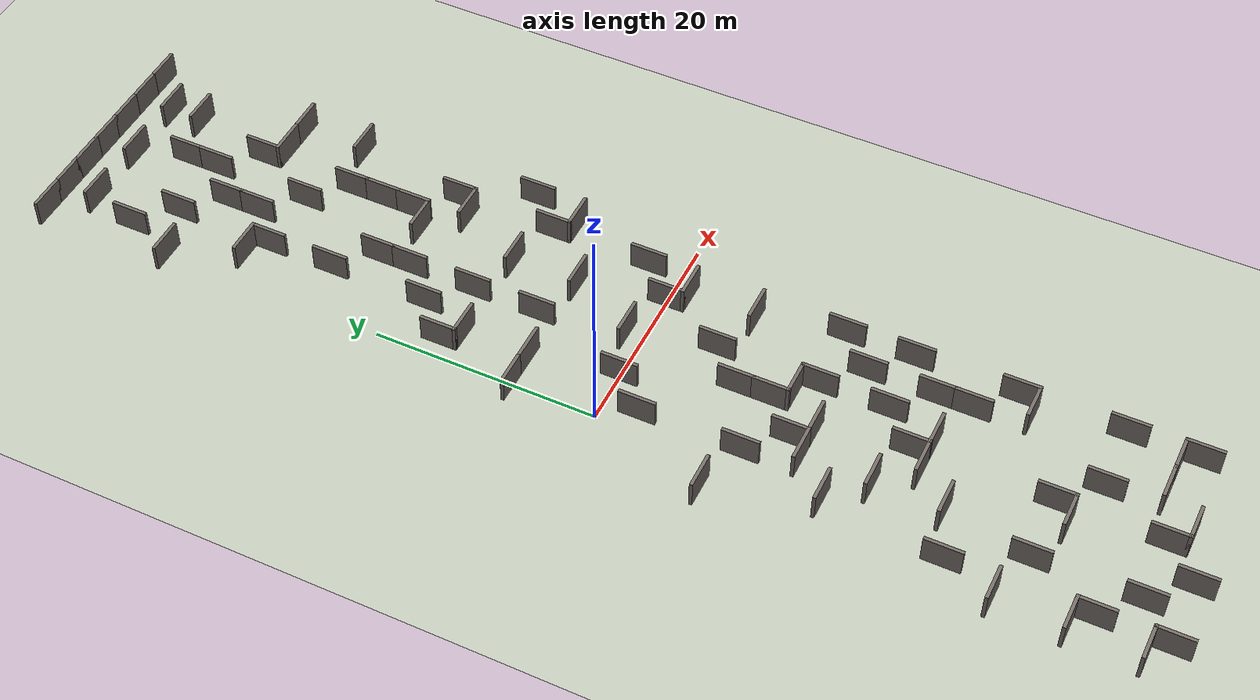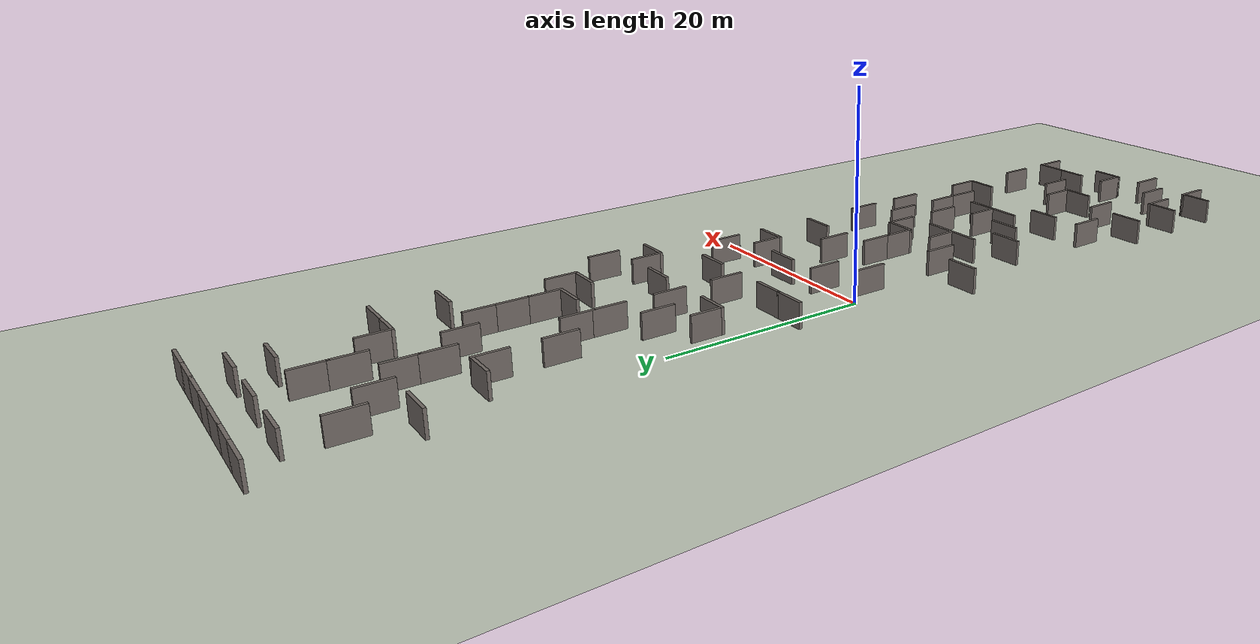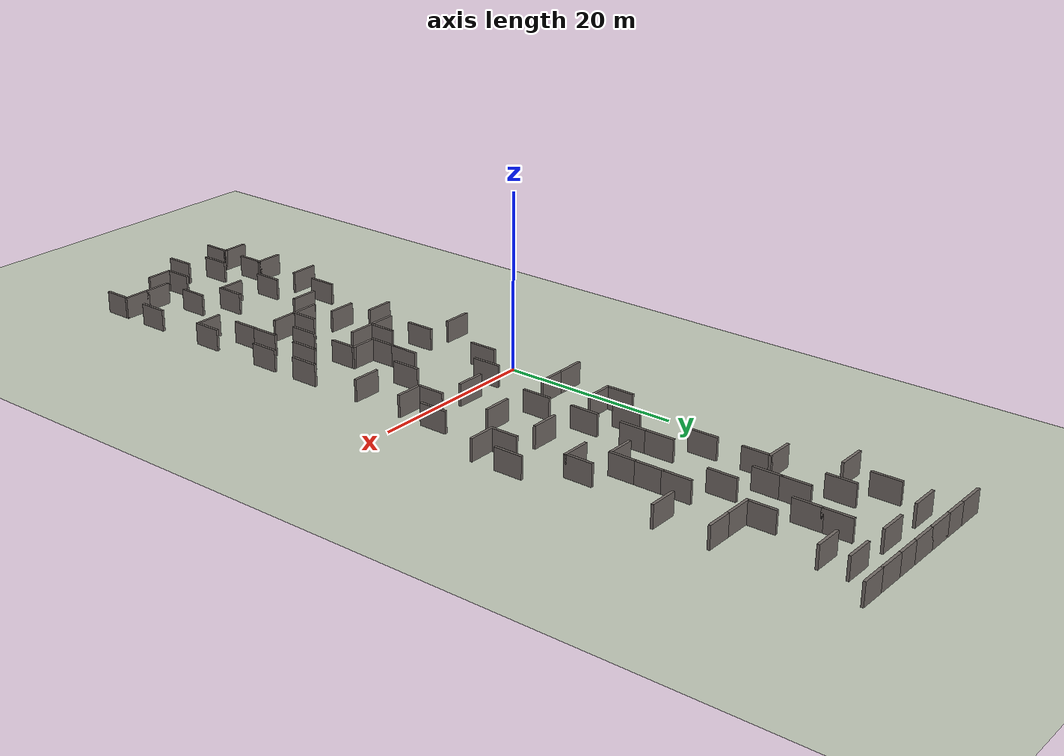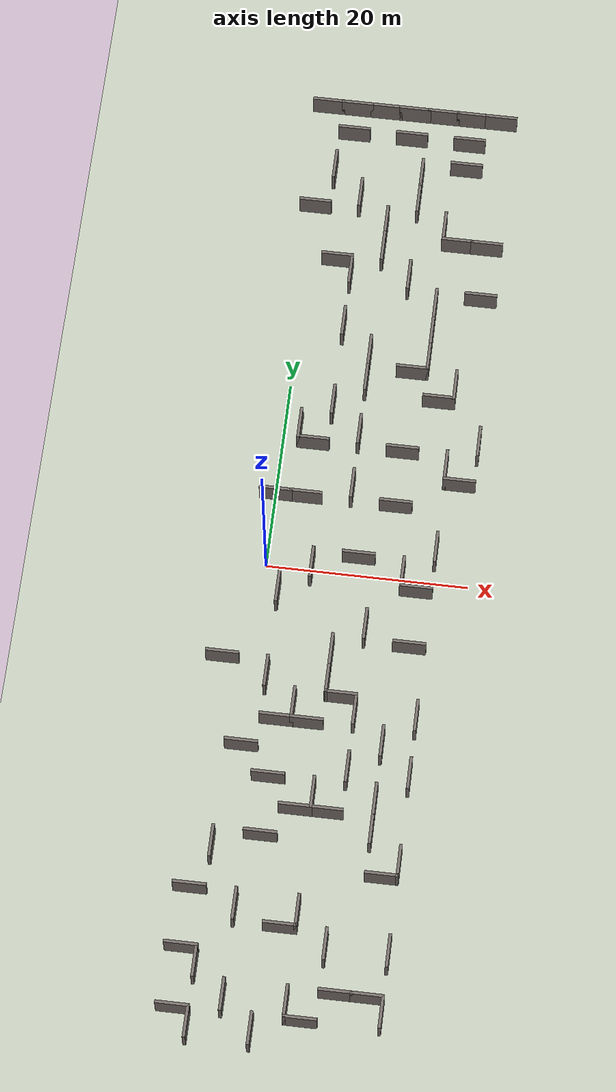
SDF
<sdf version="1.9">
 <world name="swap_world">
  <model name="ground_plane">
   <static>true</static>
   <link name="link">
    <collision name="collision">
     <geometry><plane><normal>0 0 1</normal><size>125 125</size></plane></geometry>
    </collision>
    <visual name="visual">
     <geometry><plane><normal>0 0 1</normal><size>125 125</size></plane></geometry>
     <material><ambient>0.75 0.78 0.72 1</ambient><diffuse>0.75 0.78 0.72 1</diffuse></material>
    </visual>
   </link>
  </model>
  <model name="wall_272">
   <static>true</static>
   <link name="l">
    <pose>-3.00 -10.50 1.25 0 0 0.0000</pose>
    <collision name="c"><geometry><box><size>3.30 0.3 2.5</size></box></geometry></collision>
    <visual name="v">
     <geometry><box><size>3.30 0.3 2.5</size></box></geometry>
     <material><ambient>0.45 0.42 0.4 1</ambient><diffuse>0.45 0.42 0.4 1</diffuse></material>
    </visual>
   </link>
  </model>
  <model name="wall_273">
   <static>true</static>
   <link name="l">
    <pose>-1.50 -30.00 1.25 0 0 1.5708</pose>
    <collision name="c"><geometry><box><size>3.30 0.3 2.5</size></box></geometry></collision>
    <visual name="v">
     <geometry><box><size>3.30 0.3 2.5</size></box></geometry>
     <material><ambient>0.45 0.42 0.4 1</ambient><diffuse>0.45 0.42 0.4 1</diffuse></material>
    </visual>
   </link>
  </model>
  <model name="wall_274">
   <static>true</static>
   <link name="l">
    <pose>-3.00 -34.50 1.25 0 0 0.0000</pose>
    <collision name="c"><geometry><box><size>3.30 0.3 2.5</size></box></geometry></collision>
    <visual name="v">
     <geometry><box><size>3.30 0.3 2.5</size></box></geometry>
     <material><ambient>0.45 0.42 0.4 1</ambient><diffuse>0.45 0.42 0.4 1</diffuse></material>
    </visual>
   </link>
  </model>
  <model name="wall_275">
   <static>true</static>
   <link name="l">
    <pose>-1.50 -42.00 1.25 0 0 1.5708</pose>
    <collision name="c"><geometry><box><size>3.30 0.3 2.5</size></box></geometry></collision>
    <visual name="v">
     <geometry><box><size>3.30 0.3 2.5</size></box></geometry>
     <material><ambient>0.45 0.42 0.4 1</ambient><diffuse>0.45 0.42 0.4 1</diffuse></material>
    </visual>
   </link>
  </model>
  <model name="wall_276">
   <static>true</static>
   <link name="l">
    <pose>-3.00 -40.50 1.25 0 0 0.0000</pose>
    <collision name="c"><geometry><box><size>3.30 0.3 2.5</size></box></geometry></collision>
    <visual name="v">
     <geometry><box><size>3.30 0.3 2.5</size></box></geometry>
     <material><ambient>0.45 0.42 0.4 1</ambient><diffuse>0.45 0.42 0.4 1</diffuse></material>
    </visual>
   </link>
  </model>
  <model name="wall_277">
   <static>true</static>
   <link name="l">
    <pose>-1.50 -48.00 1.25 0 0 1.5708</pose>
    <collision name="c"><geometry><box><size>3.30 0.3 2.5</size></box></geometry></collision>
    <visual name="v">
     <geometry><box><size>3.30 0.3 2.5</size></box></geometry>
     <material><ambient>0.45 0.42 0.4 1</ambient><diffuse>0.45 0.42 0.4 1</diffuse></material>
    </visual>
   </link>
  </model>
  <model name="wall_278">
   <static>true</static>
   <link name="l">
    <pose>-3.00 -46.50 1.25 0 0 0.0000</pose>
    <collision name="c"><geometry><box><size>3.30 0.3 2.5</size></box></geometry></collision>
    <visual name="v">
     <geometry><box><size>3.30 0.3 2.5</size></box></geometry>
     <material><ambient>0.45 0.42 0.4 1</ambient><diffuse>0.45 0.42 0.4 1</diffuse></material>
    </visual>
   </link>
  </model>
  <model name="wall_279">
   <static>true</static>
   <link name="l">
    <pose>0.00 52.50 1.25 0 0 0.0000</pose>
    <collision name="c"><geometry><box><size>3.30 0.3 2.5</size></box></geometry></collision>
    <visual name="v">
     <geometry><box><size>3.30 0.3 2.5</size></box></geometry>
     <material><ambient>0.45 0.42 0.4 1</ambient><diffuse>0.45 0.42 0.4 1</diffuse></material>
    </visual>
   </link>
  </model>
  <model name="wall_280">
   <static>true</static>
   <link name="l">
    <pose>1.50 45.00 1.25 0 0 1.5708</pose>
    <collision name="c"><geometry><box><size>3.30 0.3 2.5</size></box></geometry></collision>
    <visual name="v">
     <geometry><box><size>3.30 0.3 2.5</size></box></geometry>
     <material><ambient>0.45 0.42 0.4 1</ambient><diffuse>0.45 0.42 0.4 1</diffuse></material>
    </visual>
   </link>
  </model>
  <model name="wall_281">
   <static>true</static>
   <link name="l">
    <pose>0.00 40.50 1.25 0 0 0.0000</pose>
    <collision name="c"><geometry><box><size>3.30 0.3 2.5</size></box></geometry></collision>
    <visual name="v">
     <geometry><box><size>3.30 0.3 2.5</size></box></geometry>
     <material><ambient>0.45 0.42 0.4 1</ambient><diffuse>0.45 0.42 0.4 1</diffuse></material>
    </visual>
   </link>
  </model>
  <model name="wall_282">
   <static>true</static>
   <link name="l">
    <pose>1.50 15.00 1.25 0 0 1.5708</pose>
    <collision name="c"><geometry><box><size>3.30 0.3 2.5</size></box></geometry></collision>
    <visual name="v">
     <geometry><box><size>3.30 0.3 2.5</size></box></geometry>
     <material><ambient>0.45 0.42 0.4 1</ambient><diffuse>0.45 0.42 0.4 1</diffuse></material>
    </visual>
   </link>
  </model>
  <model name="wall_283">
   <static>true</static>
   <link name="l">
    <pose>0.00 7.50 1.25 0 0 0.0000</pose>
    <collision name="c"><geometry><box><size>3.30 0.3 2.5</size></box></geometry></collision>
    <visual name="v">
     <geometry><box><size>3.30 0.3 2.5</size></box></geometry>
     <material><ambient>0.45 0.42 0.4 1</ambient><diffuse>0.45 0.42 0.4 1</diffuse></material>
    </visual>
   </link>
  </model>
  <model name="wall_284">
   <static>true</static>
   <link name="l">
    <pose>1.50 -3.00 1.25 0 0 1.5708</pose>
    <collision name="c"><geometry><box><size>3.30 0.3 2.5</size></box></geometry></collision>
    <visual name="v">
     <geometry><box><size>3.30 0.3 2.5</size></box></geometry>
     <material><ambient>0.45 0.42 0.4 1</ambient><diffuse>0.45 0.42 0.4 1</diffuse></material>
    </visual>
   </link>
  </model>
  <model name="wall_285">
   <static>true</static>
   <link name="l">
    <pose>1.50 -12.00 1.25 0 0 1.5708</pose>
    <collision name="c"><geometry><box><size>3.30 0.3 2.5</size></box></geometry></collision>
    <visual name="v">
     <geometry><box><size>3.30 0.3 2.5</size></box></geometry>
     <material><ambient>0.45 0.42 0.4 1</ambient><diffuse>0.45 0.42 0.4 1</diffuse></material>
    </visual>
   </link>
  </model>
  <model name="wall_286">
   <static>true</static>
   <link name="l">
    <pose>0.00 -19.50 1.25 0 0 0.0000</pose>
    <collision name="c"><geometry><box><size>3.30 0.3 2.5</size></box></geometry></collision>
    <visual name="v">
     <geometry><box><size>3.30 0.3 2.5</size></box></geometry>
     <material><ambient>0.45 0.42 0.4 1</ambient><diffuse>0.45 0.42 0.4 1</diffuse></material>
    </visual>
   </link>
  </model>
  <model name="wall_287">
   <static>true</static>
   <link name="l">
    <pose>1.50 -36.00 1.25 0 0 1.5708</pose>
    <collision name="c"><geometry><box><size>3.30 0.3 2.5</size></box></geometry></collision>
    <visual name="v">
     <geometry><box><size>3.30 0.3 2.5</size></box></geometry>
     <material><ambient>0.45 0.42 0.4 1</ambient><diffuse>0.45 0.42 0.4 1</diffuse></material>
    </visual>
   </link>
  </model>
  <model name="wall_288">
   <static>true</static>
   <link name="l">
    <pose>1.50 -45.00 1.25 0 0 1.5708</pose>
    <collision name="c"><geometry><box><size>3.30 0.3 2.5</size></box></geometry></collision>
    <visual name="v">
     <geometry><box><size>3.30 0.3 2.5</size></box></geometry>
     <material><ambient>0.45 0.42 0.4 1</ambient><diffuse>0.45 0.42 0.4 1</diffuse></material>
    </visual>
   </link>
  </model>
  <model name="wall_289">
   <static>true</static>
   <link name="l">
    <pose>3.00 52.50 1.25 0 0 0.0000</pose>
    <collision name="c"><geometry><box><size>3.30 0.3 2.5</size></box></geometry></collision>
    <visual name="v">
     <geometry><box><size>3.30 0.3 2.5</size></box></geometry>
     <material><ambient>0.45 0.42 0.4 1</ambient><diffuse>0.45 0.42 0.4 1</diffuse></material>
    </visual>
   </link>
  </model>
  <model name="wall_290">
   <static>true</static>
   <link name="l">
    <pose>3.00 49.50 1.25 0 0 0.0000</pose>
    <collision name="c"><geometry><box><size>3.30 0.3 2.5</size></box></geometry></collision>
    <visual name="v">
     <geometry><box><size>3.30 0.3 2.5</size></box></geometry>
     <material><ambient>0.45 0.42 0.4 1</ambient><diffuse>0.45 0.42 0.4 1</diffuse></material>
    </visual>
   </link>
  </model>
  <model name="wall_291">
   <static>true</static>
   <link name="l">
    <pose>4.50 42.00 1.25 0 0 1.5708</pose>
    <collision name="c"><geometry><box><size>3.30 0.3 2.5</size></box></geometry></collision>
    <visual name="v">
     <geometry><box><size>3.30 0.3 2.5</size></box></geometry>
     <material><ambient>0.45 0.42 0.4 1</ambient><diffuse>0.45 0.42 0.4 1</diffuse></material>
    </visual>
   </link>
  </model>
  <model name="wall_292">
   <static>true</static>
   <link name="l">
    <pose>4.50 33.00 1.25 0 0 1.5708</pose>
    <collision name="c"><geometry><box><size>3.30 0.3 2.5</size></box></geometry></collision>
    <visual name="v">
     <geometry><box><size>3.30 0.3 2.5</size></box></geometry>
     <material><ambient>0.45 0.42 0.4 1</ambient><diffuse>0.45 0.42 0.4 1</diffuse></material>
    </visual>
   </link>
  </model>
  <model name="wall_293">
   <static>true</static>
   <link name="l">
    <pose>3.00 34.50 1.25 0 0 0.0000</pose>
    <collision name="c"><geometry><box><size>3.30 0.3 2.5</size></box></geometry></collision>
    <visual name="v">
     <geometry><box><size>3.30 0.3 2.5</size></box></geometry>
     <material><ambient>0.45 0.42 0.4 1</ambient><diffuse>0.45 0.42 0.4 1</diffuse></material>
    </visual>
   </link>
  </model>
  <model name="wall_294">
   <static>true</static>
   <link name="l">
    <pose>4.50 27.00 1.25 0 0 1.5708</pose>
    <collision name="c"><geometry><box><size>3.30 0.3 2.5</size></box></geometry></collision>
    <visual name="v">
     <geometry><box><size>3.30 0.3 2.5</size></box></geometry>
     <material><ambient>0.45 0.42 0.4 1</ambient><diffuse>0.45 0.42 0.4 1</diffuse></material>
    </visual>
   </link>
  </model>
  <model name="wall_295">
   <static>true</static>
   <link name="l">
    <pose>4.50 18.00 1.25 0 0 1.5708</pose>
    <collision name="c"><geometry><box><size>3.30 0.3 2.5</size></box></geometry></collision>
    <visual name="v">
     <geometry><box><size>3.30 0.3 2.5</size></box></geometry>
     <material><ambient>0.45 0.42 0.4 1</ambient><diffuse>0.45 0.42 0.4 1</diffuse></material>
    </visual>
   </link>
  </model>
  <model name="wall_296">
   <static>true</static>
   <link name="l">
    <pose>3.00 13.50 1.25 0 0 0.0000</pose>
    <collision name="c"><geometry><box><size>3.30 0.3 2.5</size></box></geometry></collision>
    <visual name="v">
     <geometry><box><size>3.30 0.3 2.5</size></box></geometry>
     <material><ambient>0.45 0.42 0.4 1</ambient><diffuse>0.45 0.42 0.4 1</diffuse></material>
    </visual>
   </link>
  </model>
  <model name="wall_297">
   <static>true</static>
   <link name="l">
    <pose>3.00 7.50 1.25 0 0 0.0000</pose>
    <collision name="c"><geometry><box><size>3.30 0.3 2.5</size></box></geometry></collision>
    <visual name="v">
     <geometry><box><size>3.30 0.3 2.5</size></box></geometry>
     <material><ambient>0.45 0.42 0.4 1</ambient><diffuse>0.45 0.42 0.4 1</diffuse></material>
    </visual>
   </link>
  </model>
  <model name="wall_298">
   <static>true</static>
   <link name="l">
    <pose>4.50 -0.00 1.25 0 0 1.5708</pose>
    <collision name="c"><geometry><box><size>3.30 0.3 2.5</size></box></geometry></collision>
    <visual name="v">
     <geometry><box><size>3.30 0.3 2.5</size></box></geometry>
     <material><ambient>0.45 0.42 0.4 1</ambient><diffuse>0.45 0.42 0.4 1</diffuse></material>
    </visual>
   </link>
  </model>
  <model name="wall_299">
   <static>true</static>
   <link name="l">
    <pose>4.50 -15.00 1.25 0 0 1.5708</pose>
    <collision name="c"><geometry><box><size>3.30 0.3 2.5</size></box></geometry></collision>
    <visual name="v">
     <geometry><box><size>3.30 0.3 2.5</size></box></geometry>
     <material><ambient>0.45 0.42 0.4 1</ambient><diffuse>0.45 0.42 0.4 1</diffuse></material>
    </visual>
   </link>
  </model>
  <model name="wall_300">
   <static>true</static>
   <link name="l">
    <pose>3.00 -16.50 1.25 0 0 0.0000</pose>
    <collision name="c"><geometry><box><size>3.30 0.3 2.5</size></box></geometry></collision>
    <visual name="v">
     <geometry><box><size>3.30 0.3 2.5</size></box></geometry>
     <material><ambient>0.45 0.42 0.4 1</ambient><diffuse>0.45 0.42 0.4 1</diffuse></material>
    </visual>
   </link>
  </model>
  <model name="wall_301">
   <static>true</static>
   <link name="l">
    <pose>3.00 -22.50 1.25 0 0 0.0000</pose>
    <collision name="c"><geometry><box><size>3.30 0.3 2.5</size></box></geometry></collision>
    <visual name="v">
     <geometry><box><size>3.30 0.3 2.5</size></box></geometry>
     <material><ambient>0.45 0.42 0.4 1</ambient><diffuse>0.45 0.42 0.4 1</diffuse></material>
    </visual>
   </link>
  </model>
  <model name="wall_302">
   <static>true</static>
   <link name="l">
    <pose>3.00 -28.50 1.25 0 0 0.0000</pose>
    <collision name="c"><geometry><box><size>3.30 0.3 2.5</size></box></geometry></collision>
    <visual name="v">
     <geometry><box><size>3.30 0.3 2.5</size></box></geometry>
     <material><ambient>0.45 0.42 0.4 1</ambient><diffuse>0.45 0.42 0.4 1</diffuse></material>
    </visual>
   </link>
  </model>
  <model name="wall_303">
   <static>true</static>
   <link name="l">
    <pose>4.50 -48.00 1.25 0 0 1.5708</pose>
    <collision name="c"><geometry><box><size>3.30 0.3 2.5</size></box></geometry></collision>
    <visual name="v">
     <geometry><box><size>3.30 0.3 2.5</size></box></geometry>
     <material><ambient>0.45 0.42 0.4 1</ambient><diffuse>0.45 0.42 0.4 1</diffuse></material>
    </visual>
   </link>
  </model>
  <model name="wall_304">
   <static>true</static>
   <link name="l">
    <pose>6.00 52.50 1.25 0 0 0.0000</pose>
    <collision name="c"><geometry><box><size>3.30 0.3 2.5</size></box></geometry></collision>
    <visual name="v">
     <geometry><box><size>3.30 0.3 2.5</size></box></geometry>
     <material><ambient>0.45 0.42 0.4 1</ambient><diffuse>0.45 0.42 0.4 1</diffuse></material>
    </visual>
   </link>
  </model>
  <model name="wall_305">
   <static>true</static>
   <link name="l">
    <pose>7.50 39.00 1.25 0 0 1.5708</pose>
    <collision name="c"><geometry><box><size>3.30 0.3 2.5</size></box></geometry></collision>
    <visual name="v">
     <geometry><box><size>3.30 0.3 2.5</size></box></geometry>
     <material><ambient>0.45 0.42 0.4 1</ambient><diffuse>0.45 0.42 0.4 1</diffuse></material>
    </visual>
   </link>
  </model>
  <model name="wall_306">
   <static>true</static>
   <link name="l">
    <pose>7.50 36.00 1.25 0 0 1.5708</pose>
    <collision name="c"><geometry><box><size>3.30 0.3 2.5</size></box></geometry></collision>
    <visual name="v">
     <geometry><box><size>3.30 0.3 2.5</size></box></geometry>
     <material><ambient>0.45 0.42 0.4 1</ambient><diffuse>0.45 0.42 0.4 1</diffuse></material>
    </visual>
   </link>
  </model>
  <model name="wall_307">
   <static>true</static>
   <link name="l">
    <pose>7.50 24.00 1.25 0 0 1.5708</pose>
    <collision name="c"><geometry><box><size>3.30 0.3 2.5</size></box></geometry></collision>
    <visual name="v">
     <geometry><box><size>3.30 0.3 2.5</size></box></geometry>
     <material><ambient>0.45 0.42 0.4 1</ambient><diffuse>0.45 0.42 0.4 1</diffuse></material>
    </visual>
   </link>
  </model>
  <model name="wall_308">
   <static>true</static>
   <link name="l">
    <pose>7.50 21.00 1.25 0 0 1.5708</pose>
    <collision name="c"><geometry><box><size>3.30 0.3 2.5</size></box></geometry></collision>
    <visual name="v">
     <geometry><box><size>3.30 0.3 2.5</size></box></geometry>
     <material><ambient>0.45 0.42 0.4 1</ambient><diffuse>0.45 0.42 0.4 1</diffuse></material>
    </visual>
   </link>
  </model>
  <model name="wall_309">
   <static>true</static>
   <link name="l">
    <pose>7.50 15.00 1.25 0 0 1.5708</pose>
    <collision name="c"><geometry><box><size>3.30 0.3 2.5</size></box></geometry></collision>
    <visual name="v">
     <geometry><box><size>3.30 0.3 2.5</size></box></geometry>
     <material><ambient>0.45 0.42 0.4 1</ambient><diffuse>0.45 0.42 0.4 1</diffuse></material>
    </visual>
   </link>
  </model>
  <model name="wall_310">
   <static>true</static>
   <link name="l">
    <pose>7.50 9.00 1.25 0 0 1.5708</pose>
    <collision name="c"><geometry><box><size>3.30 0.3 2.5</size></box></geometry></collision>
    <visual name="v">
     <geometry><box><size>3.30 0.3 2.5</size></box></geometry>
     <material><ambient>0.45 0.42 0.4 1</ambient><diffuse>0.45 0.42 0.4 1</diffuse></material>
    </visual>
   </link>
  </model>
  <model name="wall_311">
   <static>true</static>
   <link name="l">
    <pose>7.50 -9.00 1.25 0 0 1.5708</pose>
    <collision name="c"><geometry><box><size>3.30 0.3 2.5</size></box></geometry></collision>
    <visual name="v">
     <geometry><box><size>3.30 0.3 2.5</size></box></geometry>
     <material><ambient>0.45 0.42 0.4 1</ambient><diffuse>0.45 0.42 0.4 1</diffuse></material>
    </visual>
   </link>
  </model>
  <model name="wall_312">
   <static>true</static>
   <link name="l">
    <pose>7.50 -12.00 1.25 0 0 1.5708</pose>
    <collision name="c"><geometry><box><size>3.30 0.3 2.5</size></box></geometry></collision>
    <visual name="v">
     <geometry><box><size>3.30 0.3 2.5</size></box></geometry>
     <material><ambient>0.45 0.42 0.4 1</ambient><diffuse>0.45 0.42 0.4 1</diffuse></material>
    </visual>
   </link>
  </model>
  <model name="wall_313">
   <static>true</static>
   <link name="l">
    <pose>6.00 -16.50 1.25 0 0 0.0000</pose>
    <collision name="c"><geometry><box><size>3.30 0.3 2.5</size></box></geometry></collision>
    <visual name="v">
     <geometry><box><size>3.30 0.3 2.5</size></box></geometry>
     <material><ambient>0.45 0.42 0.4 1</ambient><diffuse>0.45 0.42 0.4 1</diffuse></material>
    </visual>
   </link>
  </model>
  <model name="wall_314">
   <static>true</static>
   <link name="l">
    <pose>7.50 -24.00 1.25 0 0 1.5708</pose>
    <collision name="c"><geometry><box><size>3.30 0.3 2.5</size></box></geometry></collision>
    <visual name="v">
     <geometry><box><size>3.30 0.3 2.5</size></box></geometry>
     <material><ambient>0.45 0.42 0.4 1</ambient><diffuse>0.45 0.42 0.4 1</diffuse></material>
    </visual>
   </link>
  </model>
  <model name="wall_315">
   <static>true</static>
   <link name="l">
    <pose>6.00 -25.50 1.25 0 0 0.0000</pose>
    <collision name="c"><geometry><box><size>3.30 0.3 2.5</size></box></geometry></collision>
    <visual name="v">
     <geometry><box><size>3.30 0.3 2.5</size></box></geometry>
     <material><ambient>0.45 0.42 0.4 1</ambient><diffuse>0.45 0.42 0.4 1</diffuse></material>
    </visual>
   </link>
  </model>
  <model name="wall_316">
   <static>true</static>
   <link name="l">
    <pose>7.50 -36.00 1.25 0 0 1.5708</pose>
    <collision name="c"><geometry><box><size>3.30 0.3 2.5</size></box></geometry></collision>
    <visual name="v">
     <geometry><box><size>3.30 0.3 2.5</size></box></geometry>
     <material><ambient>0.45 0.42 0.4 1</ambient><diffuse>0.45 0.42 0.4 1</diffuse></material>
    </visual>
   </link>
  </model>
  <model name="wall_317">
   <static>true</static>
   <link name="l">
    <pose>6.00 -37.50 1.25 0 0 0.0000</pose>
    <collision name="c"><geometry><box><size>3.30 0.3 2.5</size></box></geometry></collision>
    <visual name="v">
     <geometry><box><size>3.30 0.3 2.5</size></box></geometry>
     <material><ambient>0.45 0.42 0.4 1</ambient><diffuse>0.45 0.42 0.4 1</diffuse></material>
    </visual>
   </link>
  </model>
  <model name="wall_318">
   <static>true</static>
   <link name="l">
    <pose>7.50 -45.00 1.25 0 0 1.5708</pose>
    <collision name="c"><geometry><box><size>3.30 0.3 2.5</size></box></geometry></collision>
    <visual name="v">
     <geometry><box><size>3.30 0.3 2.5</size></box></geometry>
     <material><ambient>0.45 0.42 0.4 1</ambient><diffuse>0.45 0.42 0.4 1</diffuse></material>
    </visual>
   </link>
  </model>
  <model name="wall_319">
   <static>true</static>
   <link name="l">
    <pose>9.00 52.50 1.25 0 0 0.0000</pose>
    <collision name="c"><geometry><box><size>3.30 0.3 2.5</size></box></geometry></collision>
    <visual name="v">
     <geometry><box><size>3.30 0.3 2.5</size></box></geometry>
     <material><ambient>0.45 0.42 0.4 1</ambient><diffuse>0.45 0.42 0.4 1</diffuse></material>
    </visual>
   </link>
  </model>
  <model name="wall_320">
   <static>true</static>
   <link name="l">
    <pose>9.00 49.50 1.25 0 0 0.0000</pose>
    <collision name="c"><geometry><box><size>3.30 0.3 2.5</size></box></geometry></collision>
    <visual name="v">
     <geometry><box><size>3.30 0.3 2.5</size></box></geometry>
     <material><ambient>0.45 0.42 0.4 1</ambient><diffuse>0.45 0.42 0.4 1</diffuse></material>
    </visual>
   </link>
  </model>
  <model name="wall_321">
   <static>true</static>
   <link name="l">
    <pose>10.50 45.00 1.25 0 0 1.5708</pose>
    <collision name="c"><geometry><box><size>3.30 0.3 2.5</size></box></geometry></collision>
    <visual name="v">
     <geometry><box><size>3.30 0.3 2.5</size></box></geometry>
     <material><ambient>0.45 0.42 0.4 1</ambient><diffuse>0.45 0.42 0.4 1</diffuse></material>
    </visual>
   </link>
  </model>
  <model name="wall_322">
   <static>true</static>
   <link name="l">
    <pose>10.50 42.00 1.25 0 0 1.5708</pose>
    <collision name="c"><geometry><box><size>3.30 0.3 2.5</size></box></geometry></collision>
    <visual name="v">
     <geometry><box><size>3.30 0.3 2.5</size></box></geometry>
     <material><ambient>0.45 0.42 0.4 1</ambient><diffuse>0.45 0.42 0.4 1</diffuse></material>
    </visual>
   </link>
  </model>
  <model name="wall_323">
   <static>true</static>
   <link name="l">
    <pose>10.50 33.00 1.25 0 0 1.5708</pose>
    <collision name="c"><geometry><box><size>3.30 0.3 2.5</size></box></geometry></collision>
    <visual name="v">
     <geometry><box><size>3.30 0.3 2.5</size></box></geometry>
     <material><ambient>0.45 0.42 0.4 1</ambient><diffuse>0.45 0.42 0.4 1</diffuse></material>
    </visual>
   </link>
  </model>
  <model name="wall_324">
   <static>true</static>
   <link name="l">
    <pose>9.00 1.50 1.25 0 0 0.0000</pose>
    <collision name="c"><geometry><box><size>3.30 0.3 2.5</size></box></geometry></collision>
    <visual name="v">
     <geometry><box><size>3.30 0.3 2.5</size></box></geometry>
     <material><ambient>0.45 0.42 0.4 1</ambient><diffuse>0.45 0.42 0.4 1</diffuse></material>
    </visual>
   </link>
  </model>
  <model name="wall_325">
   <static>true</static>
   <link name="l">
    <pose>10.50 -6.00 1.25 0 0 1.5708</pose>
    <collision name="c"><geometry><box><size>3.30 0.3 2.5</size></box></geometry></collision>
    <visual name="v">
     <geometry><box><size>3.30 0.3 2.5</size></box></geometry>
     <material><ambient>0.45 0.42 0.4 1</ambient><diffuse>0.45 0.42 0.4 1</diffuse></material>
    </visual>
   </link>
  </model>
  <model name="wall_326">
   <static>true</static>
   <link name="l">
    <pose>10.50 -15.00 1.25 0 0 1.5708</pose>
    <collision name="c"><geometry><box><size>3.30 0.3 2.5</size></box></geometry></collision>
    <visual name="v">
     <geometry><box><size>3.30 0.3 2.5</size></box></geometry>
     <material><ambient>0.45 0.42 0.4 1</ambient><diffuse>0.45 0.42 0.4 1</diffuse></material>
    </visual>
   </link>
  </model>
  <model name="wall_327">
   <static>true</static>
   <link name="l">
    <pose>9.00 -13.50 1.25 0 0 0.0000</pose>
    <collision name="c"><geometry><box><size>3.30 0.3 2.5</size></box></geometry></collision>
    <visual name="v">
     <geometry><box><size>3.30 0.3 2.5</size></box></geometry>
     <material><ambient>0.45 0.42 0.4 1</ambient><diffuse>0.45 0.42 0.4 1</diffuse></material>
    </visual>
   </link>
  </model>
  <model name="wall_328">
   <static>true</static>
   <link name="l">
    <pose>10.50 -21.00 1.25 0 0 1.5708</pose>
    <collision name="c"><geometry><box><size>3.30 0.3 2.5</size></box></geometry></collision>
    <visual name="v">
     <geometry><box><size>3.30 0.3 2.5</size></box></geometry>
     <material><ambient>0.45 0.42 0.4 1</ambient><diffuse>0.45 0.42 0.4 1</diffuse></material>
    </visual>
   </link>
  </model>
  <model name="wall_329">
   <static>true</static>
   <link name="l">
    <pose>9.00 -25.50 1.25 0 0 0.0000</pose>
    <collision name="c"><geometry><box><size>3.30 0.3 2.5</size></box></geometry></collision>
    <visual name="v">
     <geometry><box><size>3.30 0.3 2.5</size></box></geometry>
     <material><ambient>0.45 0.42 0.4 1</ambient><diffuse>0.45 0.42 0.4 1</diffuse></material>
    </visual>
   </link>
  </model>
  <model name="wall_330">
   <static>true</static>
   <link name="l">
    <pose>10.50 -39.00 1.25 0 0 1.5708</pose>
    <collision name="c"><geometry><box><size>3.30 0.3 2.5</size></box></geometry></collision>
    <visual name="v">
     <geometry><box><size>3.30 0.3 2.5</size></box></geometry>
     <material><ambient>0.45 0.42 0.4 1</ambient><diffuse>0.45 0.42 0.4 1</diffuse></material>
    </visual>
   </link>
  </model>
  <model name="wall_331">
   <static>true</static>
   <link name="l">
    <pose>9.00 -46.50 1.25 0 0 0.0000</pose>
    <collision name="c"><geometry><box><size>3.30 0.3 2.5</size></box></geometry></collision>
    <visual name="v">
     <geometry><box><size>3.30 0.3 2.5</size></box></geometry>
     <material><ambient>0.45 0.42 0.4 1</ambient><diffuse>0.45 0.42 0.4 1</diffuse></material>
    </visual>
   </link>
  </model>
  <model name="wall_332">
   <static>true</static>
   <link name="l">
    <pose>12.00 52.50 1.25 0 0 0.0000</pose>
    <collision name="c"><geometry><box><size>3.30 0.3 2.5</size></box></geometry></collision>
    <visual name="v">
     <geometry><box><size>3.30 0.3 2.5</size></box></geometry>
     <material><ambient>0.45 0.42 0.4 1</ambient><diffuse>0.45 0.42 0.4 1</diffuse></material>
    </visual>
   </link>
  </model>
  <model name="wall_333">
   <static>true</static>
   <link name="l">
    <pose>13.50 39.00 1.25 0 0 1.5708</pose>
    <collision name="c"><geometry><box><size>3.30 0.3 2.5</size></box></geometry></collision>
    <visual name="v">
     <geometry><box><size>3.30 0.3 2.5</size></box></geometry>
     <material><ambient>0.45 0.42 0.4 1</ambient><diffuse>0.45 0.42 0.4 1</diffuse></material>
    </visual>
   </link>
  </model>
  <model name="wall_334">
   <static>true</static>
   <link name="l">
    <pose>13.50 30.00 1.25 0 0 1.5708</pose>
    <collision name="c"><geometry><box><size>3.30 0.3 2.5</size></box></geometry></collision>
    <visual name="v">
     <geometry><box><size>3.30 0.3 2.5</size></box></geometry>
     <material><ambient>0.45 0.42 0.4 1</ambient><diffuse>0.45 0.42 0.4 1</diffuse></material>
    </visual>
   </link>
  </model>
  <model name="wall_335">
   <static>true</static>
   <link name="l">
    <pose>13.50 27.00 1.25 0 0 1.5708</pose>
    <collision name="c"><geometry><box><size>3.30 0.3 2.5</size></box></geometry></collision>
    <visual name="v">
     <geometry><box><size>3.30 0.3 2.5</size></box></geometry>
     <material><ambient>0.45 0.42 0.4 1</ambient><diffuse>0.45 0.42 0.4 1</diffuse></material>
    </visual>
   </link>
  </model>
  <model name="wall_336">
   <static>true</static>
   <link name="l">
    <pose>13.50 24.00 1.25 0 0 1.5708</pose>
    <collision name="c"><geometry><box><size>3.30 0.3 2.5</size></box></geometry></collision>
    <visual name="v">
     <geometry><box><size>3.30 0.3 2.5</size></box></geometry>
     <material><ambient>0.45 0.42 0.4 1</ambient><diffuse>0.45 0.42 0.4 1</diffuse></material>
    </visual>
   </link>
  </model>
  <model name="wall_337">
   <static>true</static>
   <link name="l">
    <pose>12.00 22.50 1.25 0 0 0.0000</pose>
    <collision name="c"><geometry><box><size>3.30 0.3 2.5</size></box></geometry></collision>
    <visual name="v">
     <geometry><box><size>3.30 0.3 2.5</size></box></geometry>
     <material><ambient>0.45 0.42 0.4 1</ambient><diffuse>0.45 0.42 0.4 1</diffuse></material>
    </visual>
   </link>
  </model>
  <model name="wall_338">
   <static>true</static>
   <link name="l">
    <pose>12.00 13.50 1.25 0 0 0.0000</pose>
    <collision name="c"><geometry><box><size>3.30 0.3 2.5</size></box></geometry></collision>
    <visual name="v">
     <geometry><box><size>3.30 0.3 2.5</size></box></geometry>
     <material><ambient>0.45 0.42 0.4 1</ambient><diffuse>0.45 0.42 0.4 1</diffuse></material>
    </visual>
   </link>
  </model>
  <model name="wall_339">
   <static>true</static>
   <link name="l">
    <pose>12.00 7.50 1.25 0 0 0.0000</pose>
    <collision name="c"><geometry><box><size>3.30 0.3 2.5</size></box></geometry></collision>
    <visual name="v">
     <geometry><box><size>3.30 0.3 2.5</size></box></geometry>
     <material><ambient>0.45 0.42 0.4 1</ambient><diffuse>0.45 0.42 0.4 1</diffuse></material>
    </visual>
   </link>
  </model>
  <model name="wall_340">
   <static>true</static>
   <link name="l">
    <pose>13.50 -0.00 1.25 0 0 1.5708</pose>
    <collision name="c"><geometry><box><size>3.30 0.3 2.5</size></box></geometry></collision>
    <visual name="v">
     <geometry><box><size>3.30 0.3 2.5</size></box></geometry>
     <material><ambient>0.45 0.42 0.4 1</ambient><diffuse>0.45 0.42 0.4 1</diffuse></material>
    </visual>
   </link>
  </model>
  <model name="wall_341">
   <static>true</static>
   <link name="l">
    <pose>13.50 -18.00 1.25 0 0 1.5708</pose>
    <collision name="c"><geometry><box><size>3.30 0.3 2.5</size></box></geometry></collision>
    <visual name="v">
     <geometry><box><size>3.30 0.3 2.5</size></box></geometry>
     <material><ambient>0.45 0.42 0.4 1</ambient><diffuse>0.45 0.42 0.4 1</diffuse></material>
    </visual>
   </link>
  </model>
  <model name="wall_342">
   <static>true</static>
   <link name="l">
    <pose>13.50 -24.00 1.25 0 0 1.5708</pose>
    <collision name="c"><geometry><box><size>3.30 0.3 2.5</size></box></geometry></collision>
    <visual name="v">
     <geometry><box><size>3.30 0.3 2.5</size></box></geometry>
     <material><ambient>0.45 0.42 0.4 1</ambient><diffuse>0.45 0.42 0.4 1</diffuse></material>
    </visual>
   </link>
  </model>
  <model name="wall_343">
   <static>true</static>
   <link name="l">
    <pose>13.50 -27.00 1.25 0 0 1.5708</pose>
    <collision name="c"><geometry><box><size>3.30 0.3 2.5</size></box></geometry></collision>
    <visual name="v">
     <geometry><box><size>3.30 0.3 2.5</size></box></geometry>
     <material><ambient>0.45 0.42 0.4 1</ambient><diffuse>0.45 0.42 0.4 1</diffuse></material>
    </visual>
   </link>
  </model>
  <model name="wall_344">
   <static>true</static>
   <link name="l">
    <pose>12.00 -43.50 1.25 0 0 0.0000</pose>
    <collision name="c"><geometry><box><size>3.30 0.3 2.5</size></box></geometry></collision>
    <visual name="v">
     <geometry><box><size>3.30 0.3 2.5</size></box></geometry>
     <material><ambient>0.45 0.42 0.4 1</ambient><diffuse>0.45 0.42 0.4 1</diffuse></material>
    </visual>
   </link>
  </model>
  <model name="wall_345">
   <static>true</static>
   <link name="l">
    <pose>15.00 52.50 1.25 0 0 0.0000</pose>
    <collision name="c"><geometry><box><size>3.30 0.3 2.5</size></box></geometry></collision>
    <visual name="v">
     <geometry><box><size>3.30 0.3 2.5</size></box></geometry>
     <material><ambient>0.45 0.42 0.4 1</ambient><diffuse>0.45 0.42 0.4 1</diffuse></material>
    </visual>
   </link>
  </model>
  <model name="wall_346">
   <static>true</static>
   <link name="l">
    <pose>15.00 49.50 1.25 0 0 0.0000</pose>
    <collision name="c"><geometry><box><size>3.30 0.3 2.5</size></box></geometry></collision>
    <visual name="v">
     <geometry><box><size>3.30 0.3 2.5</size></box></geometry>
     <material><ambient>0.45 0.42 0.4 1</ambient><diffuse>0.45 0.42 0.4 1</diffuse></material>
    </visual>
   </link>
  </model>
  <model name="wall_347">
   <static>true</static>
   <link name="l">
    <pose>15.00 46.50 1.25 0 0 0.0000</pose>
    <collision name="c"><geometry><box><size>3.30 0.3 2.5</size></box></geometry></collision>
    <visual name="v">
     <geometry><box><size>3.30 0.3 2.5</size></box></geometry>
     <material><ambient>0.45 0.42 0.4 1</ambient><diffuse>0.45 0.42 0.4 1</diffuse></material>
    </visual>
   </link>
  </model>
  <model name="wall_348">
   <static>true</static>
   <link name="l">
    <pose>15.00 37.50 1.25 0 0 0.0000</pose>
    <collision name="c"><geometry><box><size>3.30 0.3 2.5</size></box></geometry></collision>
    <visual name="v">
     <geometry><box><size>3.30 0.3 2.5</size></box></geometry>
     <material><ambient>0.45 0.42 0.4 1</ambient><diffuse>0.45 0.42 0.4 1</diffuse></material>
    </visual>
   </link>
  </model>
  <model name="wall_349">
   <static>true</static>
   <link name="l">
    <pose>16.50 21.00 1.25 0 0 1.5708</pose>
    <collision name="c"><geometry><box><size>3.30 0.3 2.5</size></box></geometry></collision>
    <visual name="v">
     <geometry><box><size>3.30 0.3 2.5</size></box></geometry>
     <material><ambient>0.45 0.42 0.4 1</ambient><diffuse>0.45 0.42 0.4 1</diffuse></material>
    </visual>
   </link>
  </model>
  <model name="wall_350">
   <static>true</static>
   <link name="l">
    <pose>15.00 19.50 1.25 0 0 0.0000</pose>
    <collision name="c"><geometry><box><size>3.30 0.3 2.5</size></box></geometry></collision>
    <visual name="v">
     <geometry><box><size>3.30 0.3 2.5</size></box></geometry>
     <material><ambient>0.45 0.42 0.4 1</ambient><diffuse>0.45 0.42 0.4 1</diffuse></material>
    </visual>
   </link>
  </model>
  <model name="wall_351">
   <static>true</static>
   <link name="l">
    <pose>16.50 12.00 1.25 0 0 1.5708</pose>
    <collision name="c"><geometry><box><size>3.30 0.3 2.5</size></box></geometry></collision>
    <visual name="v">
     <geometry><box><size>3.30 0.3 2.5</size></box></geometry>
     <material><ambient>0.45 0.42 0.4 1</ambient><diffuse>0.45 0.42 0.4 1</diffuse></material>
    </visual>
   </link>
  </model>
  <model name="wall_352">
   <static>true</static>
   <link name="l">
    <pose>16.50 3.00 1.25 0 0 1.5708</pose>
    <collision name="c"><geometry><box><size>3.30 0.3 2.5</size></box></geometry></collision>
    <visual name="v">
     <geometry><box><size>3.30 0.3 2.5</size></box></geometry>
     <material><ambient>0.45 0.42 0.4 1</ambient><diffuse>0.45 0.42 0.4 1</diffuse></material>
    </visual>
   </link>
  </model>
  <model name="wall_353">
   <static>true</static>
   <link name="l">
    <pose>15.00 -1.50 1.25 0 0 0.0000</pose>
    <collision name="c"><geometry><box><size>3.30 0.3 2.5</size></box></geometry></collision>
    <visual name="v">
     <geometry><box><size>3.30 0.3 2.5</size></box></geometry>
     <material><ambient>0.45 0.42 0.4 1</ambient><diffuse>0.45 0.42 0.4 1</diffuse></material>
    </visual>
   </link>
  </model>
  <model name="wall_354">
   <static>true</static>
   <link name="l">
    <pose>15.00 -7.50 1.25 0 0 0.0000</pose>
    <collision name="c"><geometry><box><size>3.30 0.3 2.5</size></box></geometry></collision>
    <visual name="v">
     <geometry><box><size>3.30 0.3 2.5</size></box></geometry>
     <material><ambient>0.45 0.42 0.4 1</ambient><diffuse>0.45 0.42 0.4 1</diffuse></material>
    </visual>
   </link>
  </model>
  <model name="wall_355">
   <static>true</static>
   <link name="l">
    <pose>16.50 -15.00 1.25 0 0 1.5708</pose>
    <collision name="c"><geometry><box><size>3.30 0.3 2.5</size></box></geometry></collision>
    <visual name="v">
     <geometry><box><size>3.30 0.3 2.5</size></box></geometry>
     <material><ambient>0.45 0.42 0.4 1</ambient><diffuse>0.45 0.42 0.4 1</diffuse></material>
    </visual>
   </link>
  </model>
  <model name="wall_356">
   <static>true</static>
   <link name="l">
    <pose>16.50 -21.00 1.25 0 0 1.5708</pose>
    <collision name="c"><geometry><box><size>3.30 0.3 2.5</size></box></geometry></collision>
    <visual name="v">
     <geometry><box><size>3.30 0.3 2.5</size></box></geometry>
     <material><ambient>0.45 0.42 0.4 1</ambient><diffuse>0.45 0.42 0.4 1</diffuse></material>
    </visual>
   </link>
  </model>
  <model name="wall_357">
   <static>true</static>
   <link name="l">
    <pose>16.50 -30.00 1.25 0 0 1.5708</pose>
    <collision name="c"><geometry><box><size>3.30 0.3 2.5</size></box></geometry></collision>
    <visual name="v">
     <geometry><box><size>3.30 0.3 2.5</size></box></geometry>
     <material><ambient>0.45 0.42 0.4 1</ambient><diffuse>0.45 0.42 0.4 1</diffuse></material>
    </visual>
   </link>
  </model>
  <model name="wall_358">
   <static>true</static>
   <link name="l">
    <pose>15.00 -31.50 1.25 0 0 0.0000</pose>
    <collision name="c"><geometry><box><size>3.30 0.3 2.5</size></box></geometry></collision>
    <visual name="v">
     <geometry><box><size>3.30 0.3 2.5</size></box></geometry>
     <material><ambient>0.45 0.42 0.4 1</ambient><diffuse>0.45 0.42 0.4 1</diffuse></material>
    </visual>
   </link>
  </model>
  <model name="wall_359">
   <static>true</static>
   <link name="l">
    <pose>16.50 -39.00 1.25 0 0 1.5708</pose>
    <collision name="c"><geometry><box><size>3.30 0.3 2.5</size></box></geometry></collision>
    <visual name="v">
     <geometry><box><size>3.30 0.3 2.5</size></box></geometry>
     <material><ambient>0.45 0.42 0.4 1</ambient><diffuse>0.45 0.42 0.4 1</diffuse></material>
    </visual>
   </link>
  </model>
  <model name="wall_360">
   <static>true</static>
   <link name="l">
    <pose>16.50 -45.00 1.25 0 0 1.5708</pose>
    <collision name="c"><geometry><box><size>3.30 0.3 2.5</size></box></geometry></collision>
    <visual name="v">
     <geometry><box><size>3.30 0.3 2.5</size></box></geometry>
     <material><ambient>0.45 0.42 0.4 1</ambient><diffuse>0.45 0.42 0.4 1</diffuse></material>
    </visual>
   </link>
  </model>
  <model name="wall_361">
   <static>true</static>
   <link name="l">
    <pose>15.00 -43.50 1.25 0 0 0.0000</pose>
    <collision name="c"><geometry><box><size>3.30 0.3 2.5</size></box></geometry></collision>
    <visual name="v">
     <geometry><box><size>3.30 0.3 2.5</size></box></geometry>
     <material><ambient>0.45 0.42 0.4 1</ambient><diffuse>0.45 0.42 0.4 1</diffuse></material>
    </visual>
   </link>
  </model>
  <model name="wall_362">
   <static>true</static>
   <link name="l">
    <pose>18.00 52.50 1.25 0 0 0.0000</pose>
    <collision name="c"><geometry><box><size>3.30 0.3 2.5</size></box></geometry></collision>
    <visual name="v">
     <geometry><box><size>3.30 0.3 2.5</size></box></geometry>
     <material><ambient>0.45 0.42 0.4 1</ambient><diffuse>0.45 0.42 0.4 1</diffuse></material>
    </visual>
   </link>
  </model>
  <model name="wall_363">
   <static>true</static>
   <link name="l">
    <pose>18.00 37.50 1.25 0 0 0.0000</pose>
    <collision name="c"><geometry><box><size>3.30 0.3 2.5</size></box></geometry></collision>
    <visual name="v">
     <geometry><box><size>3.30 0.3 2.5</size></box></geometry>
     <material><ambient>0.45 0.42 0.4 1</ambient><diffuse>0.45 0.42 0.4 1</diffuse></material>
    </visual>
   </link>
  </model>
  <model name="wall_364">
   <static>true</static>
   <link name="l">
    <pose>18.00 31.50 1.25 0 0 0.0000</pose>
    <collision name="c"><geometry><box><size>3.30 0.3 2.5</size></box></geometry></collision>
    <visual name="v">
     <geometry><box><size>3.30 0.3 2.5</size></box></geometry>
     <material><ambient>0.45 0.42 0.4 1</ambient><diffuse>0.45 0.42 0.4 1</diffuse></material>
    </visual>
   </link>
  </model>
  <model name="wall_365">
   <static>true</static>
   <link name="l">
    <pose>19.50 15.00 1.25 0 0 1.5708</pose>
    <collision name="c"><geometry><box><size>3.30 0.3 2.5</size></box></geometry></collision>
    <visual name="v">
     <geometry><box><size>3.30 0.3 2.5</size></box></geometry>
     <material><ambient>0.45 0.42 0.4 1</ambient><diffuse>0.45 0.42 0.4 1</diffuse></material>
    </visual>
   </link>
  </model>
  <model name="wall_366">
   <static>true</static>
   <link name="l">
    <pose>18.00 10.50 1.25 0 0 0.0000</pose>
    <collision name="c"><geometry><box><size>3.30 0.3 2.5</size></box></geometry></collision>
    <visual name="v">
     <geometry><box><size>3.30 0.3 2.5</size></box></geometry>
     <material><ambient>0.45 0.42 0.4 1</ambient><diffuse>0.45 0.42 0.4 1</diffuse></material>
    </visual>
   </link>
  </model>
 </world>
</sdf>
